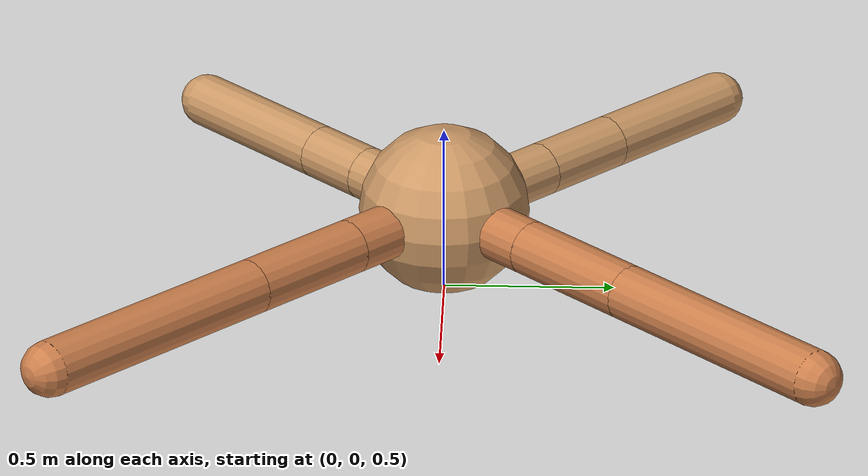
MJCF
<mujoco model="ant">
  <compiler angle="degree" coordinate="local" inertiafromgeom="true" />
  <option integrator="RK4" timestep="0.01" />
  <custom>
    <numeric data="0.0 0.0 0.55 1.0 0.0 0.0 0.0 0.0 1.0 0.0 -1.0 0.0 -1.0 0.0 1.0" name="init_qpos" />
  </custom>
  <default>
    <joint armature="1" damping="1" limited="true" />
    <geom conaffinity="0" condim="3" density="5.0" friction="1.5 0.1 0.1" margin="0.01" rgba="0.8 0.6 0.4 1" />
  </default>
  <worldbody>
    <body name="torso" pos="0 0 0.75">
      <geom name="torso_geom" pos="0 0 0" size="0.25" type="sphere" />

      <body name="front_left_leg" pos="0 0 0">
        <geom fromto="0.0 0.0 0.0 0.2554386284830746 0.2554386284830746 0.0" name="aux_1_geom" size="0.08" type="capsule" rgba=".8 .5 .3 1" />
        <body name="aux_1" pos="0.2554386284830746 0.2554386284830746 0.0">
          <joint axis="0 0 1" name="hip_1" pos="0.0 0.0 0.0" range="-40 40" type="hinge" />
          <geom fromto="0.0 0.0 0.0 0.2780648582047229 0.2780648582047229 0.0" name="left_leg_geom" size="0.08" type="capsule" rgba=".8 .5 .3 1" />
          <body pos="0.2780648582047229 0.2780648582047229 0.0" name="front_left_foot">
            <joint axis="-1 1 0" name="ankle_1" pos="0.0 0.0 0.0" range="30 100" type="hinge" />
            <geom fromto="0.0 0.0 0.0 0.5065410785550973 0.5065410785550973 0.0" name="left_ankle_geom" size="0.08" type="capsule" rgba=".8 .5 .3 1" />
          </body>
        </body>
      </body>
      <body name="front_right_leg" pos="0 0 0">
        <geom fromto="0.0 0.0 0.0 -0.2798858051451753 0.2798858051451753 0.0" name="aux_2_geom" size="0.08" type="capsule" />
        <body name="aux_2" pos="-0.2798858051451753 0.2798858051451753 0.0">
          <joint axis="0 0 1" name="hip_2" pos="0.0 0.0 0.0" range="-40 40" type="hinge" />
          <geom fromto="0.0 0.0 0.0 -0.19849422036166167 0.19849422036166167 0.0" name="right_leg_geom" size="0.08" type="capsule" />
          <body pos="-0.19849422036166167 0.19849422036166167 0.0" name="front_right_foot">
            <joint axis="1 1 0" name="ankle_2" pos="0.0 0.0 0.0" range="-100 -30" type="hinge" />
            <geom fromto="0.0 0.0 0.0 -0.3315466966371871 0.3315466966371871 0.0" name="right_ankle_geom" size="0.08" type="capsule" />
          </body>
        </body>
      </body>
      <body name="left_back_leg" pos="0 0 0">
        <geom fromto="0.0 0.0 0.0 -0.23415402350465714 -0.23415402350465714 0.0" name="aux_3_geom" size="0.08" type="capsule" />
        <body name="aux_3" pos="-0.23415402350465714 -0.23415402350465714 0.0">
          <joint axis="0 0 1" name="hip_3" pos="0.0 0.0 0.0" range="-40 40" type="hinge" />
          <geom fromto="0.0 0.0 0.0 -0.14613522264673404 -0.14613522264673404 0.0" name="back_leg_geom" size="0.08" type="capsule" />
          <body pos="-0.14613522264673404 -0.14613522264673404 0.0" name="left_back_foot">
            <joint axis="-1 1 0" name="ankle_3" pos="0.0 0.0 0.0" range="-100 -30" type="hinge" />
            <geom fromto="0.0 0.0 0.0 -0.3657688151062052 -0.3657688151062052 0.0" name="third_ankle_geom" size="0.08" type="capsule" />
          </body>
        </body>
      </body>
      <body name="right_back_leg" pos="0 0 0">
        <geom fromto="0.0 0.0 0.0 0.26335126702333383 -0.26335126702333383 0.0" name="aux_4_geom" size="0.08" type="capsule" rgba=".8 .5 .3 1" />
        <body name="aux_4" pos="0.26335126702333383 -0.26335126702333383 0.0">
          <joint axis="0 0 1" name="hip_4" pos="0.0 0.0 0.0" range="-40 40" type="hinge" />
          <geom fromto="0.0 0.0 0.0 0.2652663274021418 -0.2652663274021418 0.0" name="rightback_leg_geom" size="0.08" type="capsule" rgba=".8 .5 .3 1" />
          <body pos="0.2652663274021418 -0.2652663274021418 0.0" name="right_back_foot">
            <joint axis="1 1 0" name="ankle_4" pos="0.0 0.0 0.0" range="30 100" type="hinge" />
            <geom fromto="0.0 0.0 0.0 0.5224224117467136 -0.5224224117467136 0.0" name="fourth_ankle_geom" size="0.08" type="capsule" rgba=".8 .5 .3 1" />
          </body>
        </body>
      </body>
    </body>
  </worldbody>
  <actuator>
    <motor ctrllimited="true" ctrlrange="-1.0 1.0" joint="hip_4" gear="150" />
    <motor ctrllimited="true" ctrlrange="-1.0 1.0" joint="ankle_4" gear="150" />
    <motor ctrllimited="true" ctrlrange="-1.0 1.0" joint="hip_1" gear="150" />
    <motor ctrllimited="true" ctrlrange="-1.0 1.0" joint="ankle_1" gear="150" />
    <motor ctrllimited="true" ctrlrange="-1.0 1.0" joint="hip_2" gear="150" />
    <motor ctrllimited="true" ctrlrange="-1.0 1.0" joint="ankle_2" gear="150" />
    <motor ctrllimited="true" ctrlrange="-1.0 1.0" joint="hip_3" gear="150" />
    <motor ctrllimited="true" ctrlrange="-1.0 1.0" joint="ankle_3" gear="150" />
  </actuator>
</mujoco>
